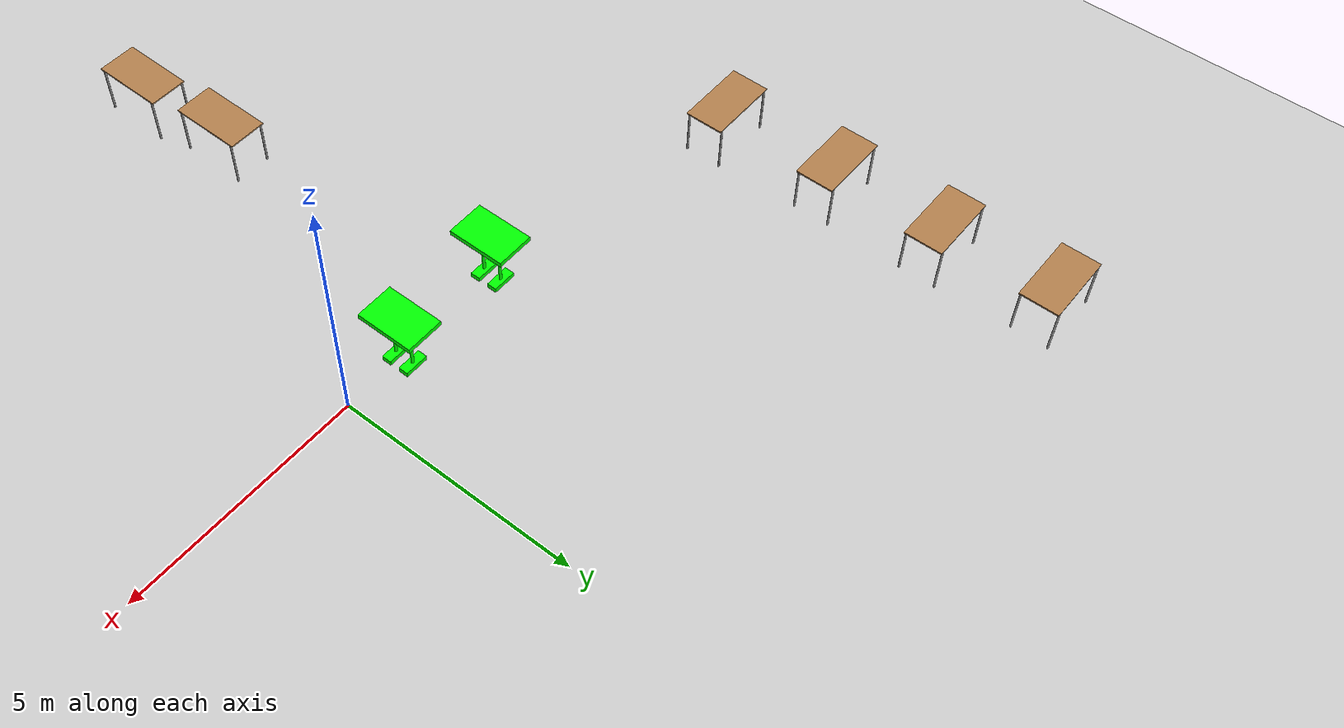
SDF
<sdf version="1.6">
 <world name="default">
  <model name="ground_plane">
   <static>1</static>
   <link name="link">
    <collision name="collision">
     <geometry><plane><normal>0 0 1</normal><size>100 100</size></plane></geometry>
     <surface>
      <contact><collide_bitmask>65535</collide_bitmask></contact>
      <friction><ode><mu>100</mu><mu2>50</mu2></ode></friction>
     </surface>
    </collision>
    <visual name="visual">
     <cast_shadows>0</cast_shadows>
     <geometry><plane><normal>0 0 1</normal><size>100 100</size></plane></geometry>
     <material>
      <script><uri>file://media/materials/scripts/gazebo.material</uri><name>Gazebo/Grey</name></script>
     </material>
    </visual>
   </link>
  </model>
  <model name="table">
   <static>1</static>
   <link name="link">
    <collision name="surface">
     <pose>0 0 1 0 -0 0</pose>
     <geometry><box><size>1.5 0.8 0.03</size></box></geometry>
     <surface><friction><ode><mu>0.6</mu><mu2>0.6</mu2></ode></friction></surface>
    </collision>
    <visual name="visual1">
     <pose>0 0 1 0 -0 0</pose>
     <geometry><box><size>1.5 0.8 0.03</size></box></geometry>
     <material>
      <script><uri>file://media/materials/scripts/gazebo.material</uri><name>Gazebo/Wood</name></script>
     </material>
    </visual>
    <collision name="front_left_leg">
     <pose>0.68 0.38 0.5 0 -0 0</pose>
     <geometry><cylinder><radius>0.02</radius><length>1</length></cylinder></geometry>
    </collision>
    <visual name="front_left_leg">
     <pose>0.68 0.38 0.5 0 -0 0</pose>
     <geometry><cylinder><radius>0.02</radius><length>1</length></cylinder></geometry>
     <material>
      <script><uri>file://media/materials/scripts/gazebo.material</uri><name>Gazebo/Grey</name></script>
     </material>
    </visual>
    <collision name="front_right_leg">
     <pose>0.68 -0.38 0.5 0 -0 0</pose>
     <geometry><cylinder><radius>0.02</radius><length>1</length></cylinder></geometry>
    </collision>
    <visual name="front_right_leg">
     <pose>0.68 -0.38 0.5 0 -0 0</pose>
     <geometry><cylinder><radius>0.02</radius><length>1</length></cylinder></geometry>
     <material>
      <script><uri>file://media/materials/scripts/gazebo.material</uri><name>Gazebo/Grey</name></script>
     </material>
    </visual>
    <collision name="back_right_leg">
     <pose>-0.68 -0.38 0.5 0 -0 0</pose>
     <geometry><cylinder><radius>0.02</radius><length>1</length></cylinder></geometry>
    </collision>
    <visual name="back_right_leg">
     <pose>-0.68 -0.38 0.5 0 -0 0</pose>
     <geometry><cylinder><radius>0.02</radius><length>1</length></cylinder></geometry>
     <material>
      <script><uri>file://media/materials/scripts/gazebo.material</uri><name>Gazebo/Grey</name></script>
     </material>
    </visual>
    <collision name="back_left_leg">
     <pose>-0.68 0.38 0.5 0 -0 0</pose>
     <geometry><cylinder><radius>0.02</radius><length>1</length></cylinder></geometry>
    </collision>
    <visual name="back_left_leg">
     <pose>-0.68 0.38 0.5 0 -0 0</pose>
     <geometry><cylinder><radius>0.02</radius><length>1</length></cylinder></geometry>
     <material>
      <script><uri>file://media/materials/scripts/gazebo.material</uri><name>Gazebo/Grey</name></script>
     </material>
    </visual>
   </link>
   <pose>-9.51613 8.33718 0 0 -0 0</pose>
  </model>
  <model name="table_clone">
   <static>1</static>
   <link name="link">
    <collision name="surface">
     <pose>0 0 1 0 -0 0</pose>
     <geometry><box><size>1.5 0.8 0.03</size></box></geometry>
     <surface><friction><ode><mu>0.6</mu><mu2>0.6</mu2></ode></friction></surface>
    </collision>
    <visual name="visual1">
     <pose>0 0 1 0 -0 0</pose>
     <geometry><box><size>1.5 0.8 0.03</size></box></geometry>
     <material>
      <script><uri>file://media/materials/scripts/gazebo.material</uri><name>Gazebo/Wood</name></script>
     </material>
    </visual>
    <collision name="front_left_leg">
     <pose>0.68 0.38 0.5 0 -0 0</pose>
     <geometry><cylinder><radius>0.02</radius><length>1</length></cylinder></geometry>
    </collision>
    <visual name="front_left_leg">
     <pose>0.68 0.38 0.5 0 -0 0</pose>
     <geometry><cylinder><radius>0.02</radius><length>1</length></cylinder></geometry>
     <material>
      <script><uri>file://media/materials/scripts/gazebo.material</uri><name>Gazebo/Grey</name></script>
     </material>
    </visual>
    <collision name="front_right_leg">
     <pose>0.68 -0.38 0.5 0 -0 0</pose>
     <geometry><cylinder><radius>0.02</radius><length>1</length></cylinder></geometry>
    </collision>
    <visual name="front_right_leg">
     <pose>0.68 -0.38 0.5 0 -0 0</pose>
     <geometry><cylinder><radius>0.02</radius><length>1</length></cylinder></geometry>
     <material>
      <script><uri>file://media/materials/scripts/gazebo.material</uri><name>Gazebo/Grey</name></script>
     </material>
    </visual>
    <collision name="back_right_leg">
     <pose>-0.68 -0.38 0.5 0 -0 0</pose>
     <geometry><cylinder><radius>0.02</radius><length>1</length></cylinder></geometry>
    </collision>
    <visual name="back_right_leg">
     <pose>-0.68 -0.38 0.5 0 -0 0</pose>
     <geometry><cylinder><radius>0.02</radius><length>1</length></cylinder></geometry>
     <material>
      <script><uri>file://media/materials/scripts/gazebo.material</uri><name>Gazebo/Grey</name></script>
     </material>
    </visual>
    <collision name="back_left_leg">
     <pose>-0.68 0.38 0.5 0 -0 0</pose>
     <geometry><cylinder><radius>0.02</radius><length>1</length></cylinder></geometry>
    </collision>
    <visual name="back_left_leg">
     <pose>-0.68 0.38 0.5 0 -0 0</pose>
     <geometry><cylinder><radius>0.02</radius><length>1</length></cylinder></geometry>
     <material>
      <script><uri>file://media/materials/scripts/gazebo.material</uri><name>Gazebo/Grey</name></script>
     </material>
    </visual>
   </link>
   <pose>-9.41745 6.02408 0 0 -0 0</pose>
  </model>
  <model name="table_clone_0">
   <static>1</static>
   <link name="link">
    <collision name="surface">
     <pose>0 0 1 0 -0 0</pose>
     <geometry><box><size>1.5 0.8 0.03</size></box></geometry>
     <surface><friction><ode><mu>0.6</mu><mu2>0.6</mu2></ode></friction></surface>
    </collision>
    <visual name="visual1">
     <pose>0 0 1 0 -0 0</pose>
     <geometry><box><size>1.5 0.8 0.03</size></box></geometry>
     <material>
      <script><uri>file://media/materials/scripts/gazebo.material</uri><name>Gazebo/Wood</name></script>
     </material>
    </visual>
    <collision name="front_left_leg">
     <pose>0.68 0.38 0.5 0 -0 0</pose>
     <geometry><cylinder><radius>0.02</radius><length>1</length></cylinder></geometry>
    </collision>
    <visual name="front_left_leg">
     <pose>0.68 0.38 0.5 0 -0 0</pose>
     <geometry><cylinder><radius>0.02</radius><length>1</length></cylinder></geometry>
     <material>
      <script><uri>file://media/materials/scripts/gazebo.material</uri><name>Gazebo/Grey</name></script>
     </material>
    </visual>
    <collision name="front_right_leg">
     <pose>0.68 -0.38 0.5 0 -0 0</pose>
     <geometry><cylinder><radius>0.02</radius><length>1</length></cylinder></geometry>
    </collision>
    <visual name="front_right_leg">
     <pose>0.68 -0.38 0.5 0 -0 0</pose>
     <geometry><cylinder><radius>0.02</radius><length>1</length></cylinder></geometry>
     <material>
      <script><uri>file://media/materials/scripts/gazebo.material</uri><name>Gazebo/Grey</name></script>
     </material>
    </visual>
    <collision name="back_right_leg">
     <pose>-0.68 -0.38 0.5 0 -0 0</pose>
     <geometry><cylinder><radius>0.02</radius><length>1</length></cylinder></geometry>
    </collision>
    <visual name="back_right_leg">
     <pose>-0.68 -0.38 0.5 0 -0 0</pose>
     <geometry><cylinder><radius>0.02</radius><length>1</length></cylinder></geometry>
     <material>
      <script><uri>file://media/materials/scripts/gazebo.material</uri><name>Gazebo/Grey</name></script>
     </material>
    </visual>
    <collision name="back_left_leg">
     <pose>-0.68 0.38 0.5 0 -0 0</pose>
     <geometry><cylinder><radius>0.02</radius><length>1</length></cylinder></geometry>
    </collision>
    <visual name="back_left_leg">
     <pose>-0.68 0.38 0.5 0 -0 0</pose>
     <geometry><cylinder><radius>0.02</radius><length>1</length></cylinder></geometry>
     <material>
      <script><uri>file://media/materials/scripts/gazebo.material</uri><name>Gazebo/Grey</name></script>
     </material>
    </visual>
   </link>
   <pose>-9.41508 3.66832 0 0 -0 0</pose>
  </model>
  <model name="table_clone_1">
   <static>1</static>
   <link name="link">
    <collision name="surface">
     <pose>0 0 1 0 -0 0</pose>
     <geometry><box><size>1.5 0.8 0.03</size></box></geometry>
     <surface><friction><ode><mu>0.6</mu><mu2>0.6</mu2></ode></friction></surface>
    </collision>
    <visual name="visual1">
     <pose>0 0 1 0 -0 0</pose>
     <geometry><box><size>1.5 0.8 0.03</size></box></geometry>
     <material>
      <script><uri>file://media/materials/scripts/gazebo.material</uri><name>Gazebo/Wood</name></script>
     </material>
    </visual>
    <collision name="front_left_leg">
     <pose>0.68 0.38 0.5 0 -0 0</pose>
     <geometry><cylinder><radius>0.02</radius><length>1</length></cylinder></geometry>
    </collision>
    <visual name="front_left_leg">
     <pose>0.68 0.38 0.5 0 -0 0</pose>
     <geometry><cylinder><radius>0.02</radius><length>1</length></cylinder></geometry>
     <material>
      <script><uri>file://media/materials/scripts/gazebo.material</uri><name>Gazebo/Grey</name></script>
     </material>
    </visual>
    <collision name="front_right_leg">
     <pose>0.68 -0.38 0.5 0 -0 0</pose>
     <geometry><cylinder><radius>0.02</radius><length>1</length></cylinder></geometry>
    </collision>
    <visual name="front_right_leg">
     <pose>0.68 -0.38 0.5 0 -0 0</pose>
     <geometry><cylinder><radius>0.02</radius><length>1</length></cylinder></geometry>
     <material>
      <script><uri>file://media/materials/scripts/gazebo.material</uri><name>Gazebo/Grey</name></script>
     </material>
    </visual>
    <collision name="back_right_leg">
     <pose>-0.68 -0.38 0.5 0 -0 0</pose>
     <geometry><cylinder><radius>0.02</radius><length>1</length></cylinder></geometry>
    </collision>
    <visual name="back_right_leg">
     <pose>-0.68 -0.38 0.5 0 -0 0</pose>
     <geometry><cylinder><radius>0.02</radius><length>1</length></cylinder></geometry>
     <material>
      <script><uri>file://media/materials/scripts/gazebo.material</uri><name>Gazebo/Grey</name></script>
     </material>
    </visual>
    <collision name="back_left_leg">
     <pose>-0.68 0.38 0.5 0 -0 0</pose>
     <geometry><cylinder><radius>0.02</radius><length>1</length></cylinder></geometry>
    </collision>
    <visual name="back_left_leg">
     <pose>-0.68 0.38 0.5 0 -0 0</pose>
     <geometry><cylinder><radius>0.02</radius><length>1</length></cylinder></geometry>
     <material>
      <script><uri>file://media/materials/scripts/gazebo.material</uri><name>Gazebo/Grey</name></script>
     </material>
    </visual>
   </link>
   <pose>-9.31257 1.19419 0 0 -0 0</pose>
  </model>
  <model name="table_clone_2_clone_1">
   <static>1</static>
   <link name="link">
    <collision name="surface">
     <pose>0 0 1 0 -0 0</pose>
     <geometry><box><size>1.5 0.8 0.03</size></box></geometry>
     <surface><friction><ode><mu>0.6</mu><mu2>0.6</mu2></ode></friction></surface>
    </collision>
    <visual name="visual1">
     <pose>0 0 1 0 -0 0</pose>
     <geometry><box><size>1.5 0.8 0.03</size></box></geometry>
     <material>
      <script><uri>file://media/materials/scripts/gazebo.material</uri><name>Gazebo/Wood</name></script>
     </material>
    </visual>
    <collision name="front_left_leg">
     <pose>0.68 0.38 0.5 0 -0 0</pose>
     <geometry><cylinder><radius>0.02</radius><length>1</length></cylinder></geometry>
    </collision>
    <visual name="front_left_leg">
     <pose>0.68 0.38 0.5 0 -0 0</pose>
     <geometry><cylinder><radius>0.02</radius><length>1</length></cylinder></geometry>
     <material>
      <script><uri>file://media/materials/scripts/gazebo.material</uri><name>Gazebo/Grey</name></script>
     </material>
    </visual>
    <collision name="front_right_leg">
     <pose>0.68 -0.38 0.5 0 -0 0</pose>
     <geometry><cylinder><radius>0.02</radius><length>1</length></cylinder></geometry>
    </collision>
    <visual name="front_right_leg">
     <pose>0.68 -0.38 0.5 0 -0 0</pose>
     <geometry><cylinder><radius>0.02</radius><length>1</length></cylinder></geometry>
     <material>
      <script><uri>file://media/materials/scripts/gazebo.material</uri><name>Gazebo/Grey</name></script>
     </material>
    </visual>
    <collision name="back_right_leg">
     <pose>-0.68 -0.38 0.5 0 -0 0</pose>
     <geometry><cylinder><radius>0.02</radius><length>1</length></cylinder></geometry>
    </collision>
    <visual name="back_right_leg">
     <pose>-0.68 -0.38 0.5 0 -0 0</pose>
     <geometry><cylinder><radius>0.02</radius><length>1</length></cylinder></geometry>
     <material>
      <script><uri>file://media/materials/scripts/gazebo.material</uri><name>Gazebo/Grey</name></script>
     </material>
    </visual>
    <collision name="back_left_leg">
     <pose>-0.68 0.38 0.5 0 -0 0</pose>
     <geometry><cylinder><radius>0.02</radius><length>1</length></cylinder></geometry>
    </collision>
    <visual name="back_left_leg">
     <pose>-0.68 0.38 0.5 0 -0 0</pose>
     <geometry><cylinder><radius>0.02</radius><length>1</length></cylinder></geometry>
     <material>
      <script><uri>file://media/materials/scripts/gazebo.material</uri><name>Gazebo/Grey</name></script>
     </material>
    </visual>
   </link>
   <pose>-2.62993 -8 0 0 -0 1.57</pose>
  </model>
  <model name="table_clone_2_clone_4">
   <static>1</static>
   <link name="link">
    <collision name="surface">
     <pose>0 0 1 0 -0 0</pose>
     <geometry><box><size>1.5 0.8 0.03</size></box></geometry>
     <surface><friction><ode><mu>0.6</mu><mu2>0.6</mu2></ode></friction></surface>
    </collision>
    <visual name="visual1">
     <pose>0 0 1 0 -0 0</pose>
     <geometry><box><size>1.5 0.8 0.03</size></box></geometry>
     <material>
      <script><uri>file://media/materials/scripts/gazebo.material</uri><name>Gazebo/Wood</name></script>
     </material>
    </visual>
    <collision name="front_left_leg">
     <pose>0.68 0.38 0.5 0 -0 0</pose>
     <geometry><cylinder><radius>0.02</radius><length>1</length></cylinder></geometry>
    </collision>
    <visual name="front_left_leg">
     <pose>0.68 0.38 0.5 0 -0 0</pose>
     <geometry><cylinder><radius>0.02</radius><length>1</length></cylinder></geometry>
     <material>
      <script><uri>file://media/materials/scripts/gazebo.material</uri><name>Gazebo/Grey</name></script>
     </material>
    </visual>
    <collision name="front_right_leg">
     <pose>0.68 -0.38 0.5 0 -0 0</pose>
     <geometry><cylinder><radius>0.02</radius><length>1</length></cylinder></geometry>
    </collision>
    <visual name="front_right_leg">
     <pose>0.68 -0.38 0.5 0 -0 0</pose>
     <geometry><cylinder><radius>0.02</radius><length>1</length></cylinder></geometry>
     <material>
      <script><uri>file://media/materials/scripts/gazebo.material</uri><name>Gazebo/Grey</name></script>
     </material>
    </visual>
    <collision name="back_right_leg">
     <pose>-0.68 -0.38 0.5 0 -0 0</pose>
     <geometry><cylinder><radius>0.02</radius><length>1</length></cylinder></geometry>
    </collision>
    <visual name="back_right_leg">
     <pose>-0.68 -0.38 0.5 0 -0 0</pose>
     <geometry><cylinder><radius>0.02</radius><length>1</length></cylinder></geometry>
     <material>
      <script><uri>file://media/materials/scripts/gazebo.material</uri><name>Gazebo/Grey</name></script>
     </material>
    </visual>
    <collision name="back_left_leg">
     <pose>-0.68 0.38 0.5 0 -0 0</pose>
     <geometry><cylinder><radius>0.02</radius><length>1</length></cylinder></geometry>
    </collision>
    <visual name="back_left_leg">
     <pose>-0.68 0.38 0.5 0 -0 0</pose>
     <geometry><cylinder><radius>0.02</radius><length>1</length></cylinder></geometry>
     <material>
      <script><uri>file://media/materials/scripts/gazebo.material</uri><name>Gazebo/Grey</name></script>
     </material>
    </visual>
   </link>
   <pose>-2.81714 -6 0 0 -0 1.57</pose>
  </model>
  <model name="humanoid">
   <link name="link_0">
    <pose>-0.2 0 -0.471429 0 -0 0</pose>
    <inertial>
     <mass>1</mass>
     <inertia>
      <ixx>0.166667</ixx>
      <ixy>0</ixy>
      <ixz>0</ixz>
      <iyy>0.166667</iyy>
      <iyz>0</iyz>
      <izz>0.166667</izz>
     </inertia>
    </inertial>
    <visual name="visual">
     <geometry><box><size>0.2 0.5 0.1</size></box></geometry>
     <material>
      <lighting>1</lighting>
      <script><uri>file://media/materials/scripts/gazebo.material</uri><name>Gazebo/Grey</name></script>
      <shader type="pixel"><normal_map>__default__</normal_map></shader>
      <ambient>0 1 0 1</ambient>
      <diffuse>0.7 0.7 0.7 1</diffuse>
      <specular>0.01 0.01 0.01 1</specular>
      <emissive>0 0 0 1</emissive>
     </material>
    </visual>
    <collision name="collision">
     <geometry><box><size>0.2 0.5 0.1</size></box></geometry>
     <surface>
      <friction>
       <ode><mu>1</mu><mu2>1</mu2><fdir1>0 0 0</fdir1><slip1>0</slip1><slip2>0</slip2></ode>
       <torsional>
        <coefficient>1</coefficient>
        <patch_radius>0</patch_radius>
        <surface_radius>0</surface_radius>
        <use_patch_radius>1</use_patch_radius>
        <ode><slip>0</slip></ode>
       </torsional>
      </friction>
      <bounce><restitution_coefficient>0</restitution_coefficient><threshold>1e+06</threshold></bounce>
      <contact>
       <collide_without_contact>0</collide_without_contact>
       <collide_without_contact_bitmask>1</collide_without_contact_bitmask>
       <collide_bitmask>1</collide_bitmask>
       <ode>
        <soft_cfm>0</soft_cfm>
        <soft_erp>0.2</soft_erp>
        <kp>1e+13</kp>
        <kd>1</kd>
        <max_vel>0.01</max_vel>
        <min_depth>0</min_depth>
       </ode>
       <bullet>
        <split_impulse>1</split_impulse>
        <split_impulse_penetration_threshold>-0.01</split_impulse_penetration_threshold>
        <soft_cfm>0</soft_cfm>
        <soft_erp>0.2</soft_erp>
        <kp>1e+13</kp>
        <kd>1</kd>
       </bullet>
      </contact>
     </surface>
    </collision>
   </link>
   <link name="link_0_clone">
    <pose>0.2 0 -0.471429 0 -0 0</pose>
    <inertial>
     <mass>1</mass>
     <inertia>
      <ixx>0.166667</ixx>
      <ixy>0</ixy>
      <ixz>0</ixz>
      <iyy>0.166667</iyy>
      <iyz>0</iyz>
      <izz>0.166667</izz>
     </inertia>
    </inertial>
    <visual name="visual">
     <geometry><box><size>0.2 0.5 0.1</size></box></geometry>
     <material>
      <lighting>1</lighting>
      <script><uri>file://media/materials/scripts/gazebo.material</uri><name>Gazebo/Grey</name></script>
      <shader type="pixel"><normal_map>__default__</normal_map></shader>
      <ambient>0 1 0 1</ambient>
      <diffuse>0.7 0.7 0.7 1</diffuse>
      <specular>0.01 0.01 0.01 1</specular>
      <emissive>0 0 0 1</emissive>
     </material>
    </visual>
    <collision name="collision">
     <geometry><box><size>0.2 0.5 0.1</size></box></geometry>
     <surface>
      <friction>
       <ode><mu>1</mu><mu2>1</mu2><fdir1>0 0 0</fdir1><slip1>0</slip1><slip2>0</slip2></ode>
       <torsional>
        <coefficient>1</coefficient>
        <patch_radius>0</patch_radius>
        <surface_radius>0</surface_radius>
        <use_patch_radius>1</use_patch_radius>
        <ode><slip>0</slip></ode>
       </torsional>
      </friction>
      <bounce><restitution_coefficient>0</restitution_coefficient><threshold>1e+06</threshold></bounce>
      <contact>
       <collide_without_contact>0</collide_without_contact>
       <collide_without_contact_bitmask>1</collide_without_contact_bitmask>
       <collide_bitmask>1</collide_bitmask>
       <ode>
        <soft_cfm>0</soft_cfm>
        <soft_erp>0.2</soft_erp>
        <kp>1e+13</kp>
        <kd>1</kd>
        <max_vel>0.01</max_vel>
        <min_depth>0</min_depth>
       </ode>
       <bullet>
        <split_impulse>1</split_impulse>
        <split_impulse_penetration_threshold>-0.01</split_impulse_penetration_threshold>
        <soft_cfm>0</soft_cfm>
        <soft_erp>0.2</soft_erp>
        <kp>1e+13</kp>
        <kd>1</kd>
       </bullet>
      </contact>
     </surface>
    </collision>
   </link>
   <link name="link_1">
    <pose>-0.2 0 -0.171429 0 -0 0</pose>
    <inertial>
     <mass>1</mass>
     <inertia><ixx>0.145833</ixx><ixy>0</ixy><ixz>0</ixz><iyy>0.145833</iyy><iyz>0</iyz><izz>0.125</izz></inertia>
    </inertial>
    <visual name="visual">
     <geometry><cylinder><radius>0.03</radius><length>0.5</length></cylinder></geometry>
     <material>
      <lighting>1</lighting>
      <script><uri>file://media/materials/scripts/gazebo.material</uri><name>Gazebo/Grey</name></script>
      <shader type="pixel"><normal_map>__default__</normal_map></shader>
      <ambient>0 1 0 1</ambient>
      <diffuse>0.7 0.7 0.7 1</diffuse>
      <specular>0.01 0.01 0.01 1</specular>
      <emissive>0 0 0 1</emissive>
     </material>
    </visual>
    <collision name="collision">
     <geometry><cylinder><radius>0.03</radius><length>0.5</length></cylinder></geometry>
     <surface>
      <friction>
       <ode><mu>1</mu><mu2>1</mu2><fdir1>0 0 0</fdir1><slip1>0</slip1><slip2>0</slip2></ode>
       <torsional>
        <coefficient>1</coefficient>
        <patch_radius>0</patch_radius>
        <surface_radius>0</surface_radius>
        <use_patch_radius>1</use_patch_radius>
        <ode><slip>0</slip></ode>
       </torsional>
      </friction>
      <bounce><restitution_coefficient>0</restitution_coefficient><threshold>1e+06</threshold></bounce>
      <contact>
       <collide_without_contact>0</collide_without_contact>
       <collide_without_contact_bitmask>1</collide_without_contact_bitmask>
       <collide_bitmask>1</collide_bitmask>
       <ode>
        <soft_cfm>0</soft_cfm>
        <soft_erp>0.2</soft_erp>
        <kp>1e+13</kp>
        <kd>1</kd>
        <max_vel>0.01</max_vel>
        <min_depth>0</min_depth>
       </ode>
       <bullet>
        <split_impulse>1</split_impulse>
        <split_impulse_penetration_threshold>-0.01</split_impulse_penetration_threshold>
        <soft_cfm>0</soft_cfm>
        <soft_erp>0.2</soft_erp>
        <kp>1e+13</kp>
        <kd>1</kd>
       </bullet>
      </contact>
     </surface>
    </collision>
   </link>
   <link name="link_1_clone">
    <pose>-0.2 0 0.328571 0 -0 0</pose>
    <inertial>
     <mass>1</mass>
     <inertia><ixx>0.145833</ixx><ixy>0</ixy><ixz>0</ixz><iyy>0.145833</iyy><iyz>0</iyz><izz>0.125</izz></inertia>
    </inertial>
    <visual name="visual">
     <geometry><cylinder><radius>0.03</radius><length>0.5</length></cylinder></geometry>
     <material>
      <lighting>1</lighting>
      <script><uri>file://media/materials/scripts/gazebo.material</uri><name>Gazebo/Grey</name></script>
      <shader type="pixel"><normal_map>__default__</normal_map></shader>
      <ambient>0 1 0 1</ambient>
      <diffuse>0.7 0.7 0.7 1</diffuse>
      <specular>0.01 0.01 0.01 1</specular>
      <emissive>0 0 0 1</emissive>
     </material>
    </visual>
    <collision name="collision">
     <geometry><cylinder><radius>0.03</radius><length>0.5</length></cylinder></geometry>
     <surface>
      <friction>
       <ode><mu>1</mu><mu2>1</mu2><fdir1>0 0 0</fdir1><slip1>0</slip1><slip2>0</slip2></ode>
       <torsional>
        <coefficient>1</coefficient>
        <patch_radius>0</patch_radius>
        <surface_radius>0</surface_radius>
        <use_patch_radius>1</use_patch_radius>
        <ode><slip>0</slip></ode>
       </torsional>
      </friction>
      <bounce><restitution_coefficient>0</restitution_coefficient><threshold>1e+06</threshold></bounce>
      <contact>
       <collide_without_contact>0</collide_without_contact>
       <collide_without_contact_bitmask>1</collide_without_contact_bitmask>
       <collide_bitmask>1</collide_bitmask>
       <ode>
        <soft_cfm>0</soft_cfm>
        <soft_erp>0.2</soft_erp>
        <kp>1e+13</kp>
        <kd>1</kd>
        <max_vel>0.01</max_vel>
        <min_depth>0</min_depth>
       </ode>
       <bullet>
        <split_impulse>1</split_impulse>
        <split_impulse_penetration_threshold>-0.01</split_impulse_penetration_threshold>
        <soft_cfm>0</soft_cfm>
        <soft_erp>0.2</soft_erp>
        <kp>1e+13</kp>
        <kd>1</kd>
       </bullet>
      </contact>
     </surface>
    </collision>
   </link>
   <link name="link_1_clone_0">
    <pose>0.2 0 -0.171429 0 -0 0</pose>
    <inertial>
     <mass>1</mass>
     <inertia><ixx>0.145833</ixx><ixy>0</ixy><ixz>0</ixz><iyy>0.145833</iyy><iyz>0</iyz><izz>0.125</izz></inertia>
    </inertial>
    <visual name="visual">
     <geometry><cylinder><radius>0.03</radius><length>0.5</length></cylinder></geometry>
     <material>
      <lighting>1</lighting>
      <script><uri>file://media/materials/scripts/gazebo.material</uri><name>Gazebo/Grey</name></script>
      <shader type="pixel"><normal_map>__default__</normal_map></shader>
      <ambient>0 1 0 1</ambient>
      <diffuse>0.7 0.7 0.7 1</diffuse>
      <specular>0.01 0.01 0.01 1</specular>
      <emissive>0 0 0 1</emissive>
     </material>
    </visual>
    <collision name="collision">
     <geometry><cylinder><radius>0.03</radius><length>0.5</length></cylinder></geometry>
     <surface>
      <friction>
       <ode><mu>1</mu><mu2>1</mu2><fdir1>0 0 0</fdir1><slip1>0</slip1><slip2>0</slip2></ode>
       <torsional>
        <coefficient>1</coefficient>
        <patch_radius>0</patch_radius>
        <surface_radius>0</surface_radius>
        <use_patch_radius>1</use_patch_radius>
        <ode><slip>0</slip></ode>
       </torsional>
      </friction>
      <bounce><restitution_coefficient>0</restitution_coefficient><threshold>1e+06</threshold></bounce>
      <contact>
       <collide_without_contact>0</collide_without_contact>
       <collide_without_contact_bitmask>1</collide_without_contact_bitmask>
       <collide_bitmask>1</collide_bitmask>
       <ode>
        <soft_cfm>0</soft_cfm>
        <soft_erp>0.2</soft_erp>
        <kp>1e+13</kp>
        <kd>1</kd>
        <max_vel>0.01</max_vel>
        <min_depth>0</min_depth>
       </ode>
       <bullet>
        <split_impulse>1</split_impulse>
        <split_impulse_penetration_threshold>-0.01</split_impulse_penetration_threshold>
        <soft_cfm>0</soft_cfm>
        <soft_erp>0.2</soft_erp>
        <kp>1e+13</kp>
        <kd>1</kd>
       </bullet>
      </contact>
     </surface>
    </collision>
   </link>
   <link name="link_1_clone_clone">
    <pose>0.2 0 0.328571 0 -0 0</pose>
    <inertial>
     <mass>1</mass>
     <inertia><ixx>0.145833</ixx><ixy>0</ixy><ixz>0</ixz><iyy>0.145833</iyy><iyz>0</iyz><izz>0.125</izz></inertia>
    </inertial>
    <visual name="visual">
     <geometry><cylinder><radius>0.03</radius><length>0.5</length></cylinder></geometry>
     <material>
      <lighting>1</lighting>
      <script><uri>file://media/materials/scripts/gazebo.material</uri><name>Gazebo/Grey</name></script>
      <shader type="pixel"><normal_map>__default__</normal_map></shader>
      <ambient>0 1 0 1</ambient>
      <diffuse>0.7 0.7 0.7 1</diffuse>
      <specular>0.01 0.01 0.01 1</specular>
      <emissive>0 0 0 1</emissive>
     </material>
    </visual>
    <collision name="collision">
     <geometry><cylinder><radius>0.03</radius><length>0.5</length></cylinder></geometry>
     <surface>
      <friction>
       <ode><mu>1</mu><mu2>1</mu2><fdir1>0 0 0</fdir1><slip1>0</slip1><slip2>0</slip2></ode>
       <torsional>
        <coefficient>1</coefficient>
        <patch_radius>0</patch_radius>
        <surface_radius>0</surface_radius>
        <use_patch_radius>1</use_patch_radius>
        <ode><slip>0</slip></ode>
       </torsional>
      </friction>
      <bounce><restitution_coefficient>0</restitution_coefficient><threshold>1e+06</threshold></bounce>
      <contact>
       <collide_without_contact>0</collide_without_contact>
       <collide_without_contact_bitmask>1</collide_without_contact_bitmask>
       <collide_bitmask>1</collide_bitmask>
       <ode>
        <soft_cfm>0</soft_cfm>
        <soft_erp>0.2</soft_erp>
        <kp>1e+13</kp>
        <kd>1</kd>
        <max_vel>0.01</max_vel>
        <min_depth>0</min_depth>
       </ode>
       <bullet>
        <split_impulse>1</split_impulse>
        <split_impulse_penetration_threshold>-0.01</split_impulse_penetration_threshold>
        <soft_cfm>0</soft_cfm>
        <soft_erp>0.2</soft_erp>
        <kp>1e+13</kp>
        <kd>1</kd>
       </bullet>
      </contact>
     </surface>
    </collision>
   </link>
   <link name="link_3">
    <pose>0 0 0.628571 0 -0 0</pose>
    <inertial>
     <mass>1</mass>
     <inertia>
      <ixx>0.166667</ixx>
      <ixy>0</ixy>
      <ixz>0</ixz>
      <iyy>0.166667</iyy>
      <iyz>0</iyz>
      <izz>0.166667</izz>
     </inertia>
    </inertial>
    <visual name="visual">
     <geometry><box><size>1.2 0.8 0.1</size></box></geometry>
     <material>
      <lighting>1</lighting>
      <script><uri>file://media/materials/scripts/gazebo.material</uri><name>Gazebo/Grey</name></script>
      <shader type="pixel"><normal_map>__default__</normal_map></shader>
      <ambient>0 1 0 1</ambient>
      <diffuse>0.7 0.7 0.7 1</diffuse>
      <specular>0.01 0.01 0.01 1</specular>
      <emissive>0 0 0 1</emissive>
     </material>
    </visual>
    <collision name="collision">
     <geometry><box><size>1.2 0.8 0.1</size></box></geometry>
     <surface>
      <friction>
       <ode><mu>1</mu><mu2>1</mu2><fdir1>0 0 0</fdir1><slip1>0</slip1><slip2>0</slip2></ode>
       <torsional>
        <coefficient>1</coefficient>
        <patch_radius>0</patch_radius>
        <surface_radius>0</surface_radius>
        <use_patch_radius>1</use_patch_radius>
        <ode><slip>0</slip></ode>
       </torsional>
      </friction>
      <bounce><restitution_coefficient>0</restitution_coefficient><threshold>1e+06</threshold></bounce>
      <contact>
       <collide_without_contact>0</collide_without_contact>
       <collide_without_contact_bitmask>1</collide_without_contact_bitmask>
       <collide_bitmask>1</collide_bitmask>
       <ode>
        <soft_cfm>0</soft_cfm>
        <soft_erp>0.2</soft_erp>
        <kp>1e+13</kp>
        <kd>1</kd>
        <max_vel>0.01</max_vel>
        <min_depth>0</min_depth>
       </ode>
       <bullet>
        <split_impulse>1</split_impulse>
        <split_impulse_penetration_threshold>-0.01</split_impulse_penetration_threshold>
        <soft_cfm>0</soft_cfm>
        <soft_erp>0.2</soft_erp>
        <kp>1e+13</kp>
        <kd>1</kd>
       </bullet>
      </contact>
     </surface>
    </collision>
   </link>
   <joint name="link_1_JOINT_3" type="fixed">
    <parent>link_1</parent>
    <child>link_0</child>
    <physics>
     <ode><limit><cfm>0</cfm><erp>0.2</erp></limit><suspension><cfm>0</cfm><erp>0.2</erp></suspension></ode>
    </physics>
   </joint>
   <joint name="link_1_clone_0_JOINT_2" type="fixed">
    <parent>link_1_clone_0</parent>
    <child>link_0_clone</child>
    <physics>
     <ode><limit><cfm>0</cfm><erp>0.2</erp></limit><suspension><cfm>0</cfm><erp>0.2</erp></suspension></ode>
    </physics>
   </joint>
   <joint name="link_1_clone_JOINT_1" type="universal">
    <parent>link_1_clone</parent>
    <child>link_1</child>
    <axis>
     <xyz>1 0 0</xyz>
     <use_parent_model_frame>0</use_parent_model_frame>
     <limit><lower>-0.5</lower><upper>0.5</upper><effort>-1</effort><velocity>-1</velocity></limit>
     <dynamics>
      <spring_reference>0</spring_reference>
      <spring_stiffness>0</spring_stiffness>
      <damping>0</damping>
     </dynamics>
    </axis>
    <axis2>
     <xyz>0 1 0</xyz>
     <use_parent_model_frame>0</use_parent_model_frame>
     <dynamics>
      <spring_reference>0</spring_reference>
      <spring_stiffness>0</spring_stiffness>
      <damping>0</damping>
     </dynamics>
     <limit><lower>-0.5</lower><upper>0.5</upper><effort>-1</effort><velocity>-1</velocity></limit>
    </axis2>
    <physics>
     <ode><limit><cfm>0</cfm><erp>0.2</erp></limit><suspension><cfm>0</cfm><erp>0.2</erp></suspension></ode>
    </physics>
   </joint>
   <joint name="link_1_clone_clone_JOINT_4" type="universal">
    <parent>link_1_clone_clone</parent>
    <child>link_1_clone_0</child>
    <axis>
     <xyz>1 0 0</xyz>
     <use_parent_model_frame>0</use_parent_model_frame>
     <limit><lower>-0.5</lower><upper>0.5</upper><effort>-1</effort><velocity>-1</velocity></limit>
     <dynamics>
      <spring_reference>0</spring_reference>
      <spring_stiffness>0</spring_stiffness>
      <damping>0</damping>
     </dynamics>
    </axis>
    <axis2>
     <xyz>0 1 0</xyz>
     <use_parent_model_frame>0</use_parent_model_frame>
     <dynamics>
      <spring_reference>0</spring_reference>
      <spring_stiffness>0</spring_stiffness>
      <damping>0</damping>
     </dynamics>
     <limit><lower>-0.5</lower><upper>0.5</upper><effort>-1</effort><velocity>-1</velocity></limit>
    </axis2>
    <physics>
     <ode><limit><cfm>0</cfm><erp>0.2</erp></limit><suspension><cfm>0</cfm><erp>0.2</erp></suspension></ode>
    </physics>
   </joint>
   <joint name="link_3_JOINT_5" type="fixed">
    <parent>link_3</parent>
    <child>link_1_clone</child>
    <physics>
     <ode><limit><cfm>0</cfm><erp>0.2</erp></limit><suspension><cfm>0</cfm><erp>0.2</erp></suspension></ode>
    </physics>
   </joint>
   <joint name="link_3_JOINT_6" type="fixed">
    <parent>link_3</parent>
    <child>link_1_clone_clone</child>
    <physics>
     <ode><limit><cfm>0</cfm><erp>0.2</erp></limit><suspension><cfm>0</cfm><erp>0.2</erp></suspension></ode>
    </physics>
   </joint>
   <static>0</static>
   <pose>-1.35444 0.07446 0.521429 0 -0 1.57347</pose>
  </model>
  <model name="humanoid_0">
   <link name="link_0">
    <pose>-0.2 0 -0.471429 0 -0 0</pose>
    <inertial>
     <mass>1</mass>
     <inertia>
      <ixx>0.166667</ixx>
      <ixy>0</ixy>
      <ixz>0</ixz>
      <iyy>0.166667</iyy>
      <iyz>0</iyz>
      <izz>0.166667</izz>
     </inertia>
    </inertial>
    <visual name="visual">
     <geometry><box><size>0.2 0.5 0.1</size></box></geometry>
     <material>
      <lighting>1</lighting>
      <script><uri>file://media/materials/scripts/gazebo.material</uri><name>Gazebo/Grey</name></script>
      <shader type="pixel"><normal_map>__default__</normal_map></shader>
      <ambient>0 1 0 1</ambient>
      <diffuse>0.7 0.7 0.7 1</diffuse>
      <specular>0.01 0.01 0.01 1</specular>
      <emissive>0 0 0 1</emissive>
     </material>
    </visual>
    <collision name="collision">
     <geometry><box><size>0.2 0.5 0.1</size></box></geometry>
     <surface>
      <friction>
       <ode><mu>1</mu><mu2>1</mu2><fdir1>0 0 0</fdir1><slip1>0</slip1><slip2>0</slip2></ode>
       <torsional>
        <coefficient>1</coefficient>
        <patch_radius>0</patch_radius>
        <surface_radius>0</surface_radius>
        <use_patch_radius>1</use_patch_radius>
        <ode><slip>0</slip></ode>
       </torsional>
      </friction>
      <bounce><restitution_coefficient>0</restitution_coefficient><threshold>1e+06</threshold></bounce>
      <contact>
       <collide_without_contact>0</collide_without_contact>
       <collide_without_contact_bitmask>1</collide_without_contact_bitmask>
       <collide_bitmask>1</collide_bitmask>
       <ode>
        <soft_cfm>0</soft_cfm>
        <soft_erp>0.2</soft_erp>
        <kp>1e+13</kp>
        <kd>1</kd>
        <max_vel>0.01</max_vel>
        <min_depth>0</min_depth>
       </ode>
       <bullet>
        <split_impulse>1</split_impulse>
        <split_impulse_penetration_threshold>-0.01</split_impulse_penetration_threshold>
        <soft_cfm>0</soft_cfm>
        <soft_erp>0.2</soft_erp>
        <kp>1e+13</kp>
        <kd>1</kd>
       </bullet>
      </contact>
     </surface>
    </collision>
   </link>
   <link name="link_0_clone">
    <pose>0.2 0 -0.471429 0 -0 0</pose>
    <inertial>
     <mass>1</mass>
     <inertia>
      <ixx>0.166667</ixx>
      <ixy>0</ixy>
      <ixz>0</ixz>
      <iyy>0.166667</iyy>
      <iyz>0</iyz>
      <izz>0.166667</izz>
     </inertia>
    </inertial>
    <visual name="visual">
     <geometry><box><size>0.2 0.5 0.1</size></box></geometry>
     <material>
      <lighting>1</lighting>
      <script><uri>file://media/materials/scripts/gazebo.material</uri><name>Gazebo/Grey</name></script>
      <shader type="pixel"><normal_map>__default__</normal_map></shader>
      <ambient>0 1 0 1</ambient>
      <diffuse>0.7 0.7 0.7 1</diffuse>
      <specular>0.01 0.01 0.01 1</specular>
      <emissive>0 0 0 1</emissive>
     </material>
    </visual>
    <collision name="collision">
     <geometry><box><size>0.2 0.5 0.1</size></box></geometry>
     <surface>
      <friction>
       <ode><mu>1</mu><mu2>1</mu2><fdir1>0 0 0</fdir1><slip1>0</slip1><slip2>0</slip2></ode>
       <torsional>
        <coefficient>1</coefficient>
        <patch_radius>0</patch_radius>
        <surface_radius>0</surface_radius>
        <use_patch_radius>1</use_patch_radius>
        <ode><slip>0</slip></ode>
       </torsional>
      </friction>
      <bounce><restitution_coefficient>0</restitution_coefficient><threshold>1e+06</threshold></bounce>
      <contact>
       <collide_without_contact>0</collide_without_contact>
       <collide_without_contact_bitmask>1</collide_without_contact_bitmask>
       <collide_bitmask>1</collide_bitmask>
       <ode>
        <soft_cfm>0</soft_cfm>
        <soft_erp>0.2</soft_erp>
        <kp>1e+13</kp>
        <kd>1</kd>
        <max_vel>0.01</max_vel>
        <min_depth>0</min_depth>
       </ode>
       <bullet>
        <split_impulse>1</split_impulse>
        <split_impulse_penetration_threshold>-0.01</split_impulse_penetration_threshold>
        <soft_cfm>0</soft_cfm>
        <soft_erp>0.2</soft_erp>
        <kp>1e+13</kp>
        <kd>1</kd>
       </bullet>
      </contact>
     </surface>
    </collision>
   </link>
   <link name="link_1">
    <pose>-0.2 0 -0.171429 0 -0 0</pose>
    <inertial>
     <mass>1</mass>
     <inertia><ixx>0.145833</ixx><ixy>0</ixy><ixz>0</ixz><iyy>0.145833</iyy><iyz>0</iyz><izz>0.125</izz></inertia>
    </inertial>
    <visual name="visual">
     <geometry><cylinder><radius>0.03</radius><length>0.5</length></cylinder></geometry>
     <material>
      <lighting>1</lighting>
      <script><uri>file://media/materials/scripts/gazebo.material</uri><name>Gazebo/Grey</name></script>
      <shader type="pixel"><normal_map>__default__</normal_map></shader>
      <ambient>0 1 0 1</ambient>
      <diffuse>0.7 0.7 0.7 1</diffuse>
      <specular>0.01 0.01 0.01 1</specular>
      <emissive>0 0 0 1</emissive>
     </material>
    </visual>
    <collision name="collision">
     <geometry><cylinder><radius>0.03</radius><length>0.5</length></cylinder></geometry>
     <surface>
      <friction>
       <ode><mu>1</mu><mu2>1</mu2><fdir1>0 0 0</fdir1><slip1>0</slip1><slip2>0</slip2></ode>
       <torsional>
        <coefficient>1</coefficient>
        <patch_radius>0</patch_radius>
        <surface_radius>0</surface_radius>
        <use_patch_radius>1</use_patch_radius>
        <ode><slip>0</slip></ode>
       </torsional>
      </friction>
      <bounce><restitution_coefficient>0</restitution_coefficient><threshold>1e+06</threshold></bounce>
      <contact>
       <collide_without_contact>0</collide_without_contact>
       <collide_without_contact_bitmask>1</collide_without_contact_bitmask>
       <collide_bitmask>1</collide_bitmask>
       <ode>
        <soft_cfm>0</soft_cfm>
        <soft_erp>0.2</soft_erp>
        <kp>1e+13</kp>
        <kd>1</kd>
        <max_vel>0.01</max_vel>
        <min_depth>0</min_depth>
       </ode>
       <bullet>
        <split_impulse>1</split_impulse>
        <split_impulse_penetration_threshold>-0.01</split_impulse_penetration_threshold>
        <soft_cfm>0</soft_cfm>
        <soft_erp>0.2</soft_erp>
        <kp>1e+13</kp>
        <kd>1</kd>
       </bullet>
      </contact>
     </surface>
    </collision>
   </link>
   <link name="link_1_clone">
    <pose>-0.2 0 0.328571 0 -0 0</pose>
    <inertial>
     <mass>1</mass>
     <inertia><ixx>0.145833</ixx><ixy>0</ixy><ixz>0</ixz><iyy>0.145833</iyy><iyz>0</iyz><izz>0.125</izz></inertia>
    </inertial>
    <visual name="visual">
     <geometry><cylinder><radius>0.03</radius><length>0.5</length></cylinder></geometry>
     <material>
      <lighting>1</lighting>
      <script><uri>file://media/materials/scripts/gazebo.material</uri><name>Gazebo/Grey</name></script>
      <shader type="pixel"><normal_map>__default__</normal_map></shader>
      <ambient>0 1 0 1</ambient>
      <diffuse>0.7 0.7 0.7 1</diffuse>
      <specular>0.01 0.01 0.01 1</specular>
      <emissive>0 0 0 1</emissive>
     </material>
    </visual>
    <collision name="collision">
     <geometry><cylinder><radius>0.03</radius><length>0.5</length></cylinder></geometry>
     <surface>
      <friction>
       <ode><mu>1</mu><mu2>1</mu2><fdir1>0 0 0</fdir1><slip1>0</slip1><slip2>0</slip2></ode>
       <torsional>
        <coefficient>1</coefficient>
        <patch_radius>0</patch_radius>
        <surface_radius>0</surface_radius>
        <use_patch_radius>1</use_patch_radius>
        <ode><slip>0</slip></ode>
       </torsional>
      </friction>
      <bounce><restitution_coefficient>0</restitution_coefficient><threshold>1e+06</threshold></bounce>
      <contact>
       <collide_without_contact>0</collide_without_contact>
       <collide_without_contact_bitmask>1</collide_without_contact_bitmask>
       <collide_bitmask>1</collide_bitmask>
       <ode>
        <soft_cfm>0</soft_cfm>
        <soft_erp>0.2</soft_erp>
        <kp>1e+13</kp>
        <kd>1</kd>
        <max_vel>0.01</max_vel>
        <min_depth>0</min_depth>
       </ode>
       <bullet>
        <split_impulse>1</split_impulse>
        <split_impulse_penetration_threshold>-0.01</split_impulse_penetration_threshold>
        <soft_cfm>0</soft_cfm>
        <soft_erp>0.2</soft_erp>
        <kp>1e+13</kp>
        <kd>1</kd>
       </bullet>
      </contact>
     </surface>
    </collision>
   </link>
   <link name="link_1_clone_0">
    <pose>0.2 0 -0.171429 0 -0 0</pose>
    <inertial>
     <mass>1</mass>
     <inertia><ixx>0.145833</ixx><ixy>0</ixy><ixz>0</ixz><iyy>0.145833</iyy><iyz>0</iyz><izz>0.125</izz></inertia>
    </inertial>
    <visual name="visual">
     <geometry><cylinder><radius>0.03</radius><length>0.5</length></cylinder></geometry>
     <material>
      <lighting>1</lighting>
      <script><uri>file://media/materials/scripts/gazebo.material</uri><name>Gazebo/Grey</name></script>
      <shader type="pixel"><normal_map>__default__</normal_map></shader>
      <ambient>0 1 0 1</ambient>
      <diffuse>0.7 0.7 0.7 1</diffuse>
      <specular>0.01 0.01 0.01 1</specular>
      <emissive>0 0 0 1</emissive>
     </material>
    </visual>
    <collision name="collision">
     <geometry><cylinder><radius>0.03</radius><length>0.5</length></cylinder></geometry>
     <surface>
      <friction>
       <ode><mu>1</mu><mu2>1</mu2><fdir1>0 0 0</fdir1><slip1>0</slip1><slip2>0</slip2></ode>
       <torsional>
        <coefficient>1</coefficient>
        <patch_radius>0</patch_radius>
        <surface_radius>0</surface_radius>
        <use_patch_radius>1</use_patch_radius>
        <ode><slip>0</slip></ode>
       </torsional>
      </friction>
      <bounce><restitution_coefficient>0</restitution_coefficient><threshold>1e+06</threshold></bounce>
      <contact>
       <collide_without_contact>0</collide_without_contact>
       <collide_without_contact_bitmask>1</collide_without_contact_bitmask>
       <collide_bitmask>1</collide_bitmask>
       <ode>
        <soft_cfm>0</soft_cfm>
        <soft_erp>0.2</soft_erp>
        <kp>1e+13</kp>
        <kd>1</kd>
        <max_vel>0.01</max_vel>
        <min_depth>0</min_depth>
       </ode>
       <bullet>
        <split_impulse>1</split_impulse>
        <split_impulse_penetration_threshold>-0.01</split_impulse_penetration_threshold>
        <soft_cfm>0</soft_cfm>
        <soft_erp>0.2</soft_erp>
        <kp>1e+13</kp>
        <kd>1</kd>
       </bullet>
      </contact>
     </surface>
    </collision>
   </link>
   <link name="link_1_clone_clone">
    <pose>0.2 0 0.328571 0 -0 0</pose>
    <inertial>
     <mass>1</mass>
     <inertia><ixx>0.145833</ixx><ixy>0</ixy><ixz>0</ixz><iyy>0.145833</iyy><iyz>0</iyz><izz>0.125</izz></inertia>
    </inertial>
    <visual name="visual">
     <geometry><cylinder><radius>0.03</radius><length>0.5</length></cylinder></geometry>
     <material>
      <lighting>1</lighting>
      <script><uri>file://media/materials/scripts/gazebo.material</uri><name>Gazebo/Grey</name></script>
      <shader type="pixel"><normal_map>__default__</normal_map></shader>
      <ambient>0 1 0 1</ambient>
      <diffuse>0.7 0.7 0.7 1</diffuse>
      <specular>0.01 0.01 0.01 1</specular>
      <emissive>0 0 0 1</emissive>
     </material>
    </visual>
    <collision name="collision">
     <geometry><cylinder><radius>0.03</radius><length>0.5</length></cylinder></geometry>
     <surface>
      <friction>
       <ode><mu>1</mu><mu2>1</mu2><fdir1>0 0 0</fdir1><slip1>0</slip1><slip2>0</slip2></ode>
       <torsional>
        <coefficient>1</coefficient>
        <patch_radius>0</patch_radius>
        <surface_radius>0</surface_radius>
        <use_patch_radius>1</use_patch_radius>
        <ode><slip>0</slip></ode>
       </torsional>
      </friction>
      <bounce><restitution_coefficient>0</restitution_coefficient><threshold>1e+06</threshold></bounce>
      <contact>
       <collide_without_contact>0</collide_without_contact>
       <collide_without_contact_bitmask>1</collide_without_contact_bitmask>
       <collide_bitmask>1</collide_bitmask>
       <ode>
        <soft_cfm>0</soft_cfm>
        <soft_erp>0.2</soft_erp>
        <kp>1e+13</kp>
        <kd>1</kd>
        <max_vel>0.01</max_vel>
        <min_depth>0</min_depth>
       </ode>
       <bullet>
        <split_impulse>1</split_impulse>
        <split_impulse_penetration_threshold>-0.01</split_impulse_penetration_threshold>
        <soft_cfm>0</soft_cfm>
        <soft_erp>0.2</soft_erp>
        <kp>1e+13</kp>
        <kd>1</kd>
       </bullet>
      </contact>
     </surface>
    </collision>
   </link>
   <link name="link_3">
    <pose>0 0 0.628571 0 -0 0</pose>
    <inertial>
     <mass>1</mass>
     <inertia>
      <ixx>0.166667</ixx>
      <ixy>0</ixy>
      <ixz>0</ixz>
      <iyy>0.166667</iyy>
      <iyz>0</iyz>
      <izz>0.166667</izz>
     </inertia>
    </inertial>
    <visual name="visual">
     <geometry><box><size>1.2 0.8 0.1</size></box></geometry>
     <material>
      <lighting>1</lighting>
      <script><uri>file://media/materials/scripts/gazebo.material</uri><name>Gazebo/Grey</name></script>
      <shader type="pixel"><normal_map>__default__</normal_map></shader>
      <ambient>0 1 0 1</ambient>
      <diffuse>0.7 0.7 0.7 1</diffuse>
      <specular>0.01 0.01 0.01 1</specular>
      <emissive>0 0 0 1</emissive>
     </material>
    </visual>
    <collision name="collision">
     <geometry><box><size>1.2 0.8 0.1</size></box></geometry>
     <surface>
      <friction>
       <ode><mu>1</mu><mu2>1</mu2><fdir1>0 0 0</fdir1><slip1>0</slip1><slip2>0</slip2></ode>
       <torsional>
        <coefficient>1</coefficient>
        <patch_radius>0</patch_radius>
        <surface_radius>0</surface_radius>
        <use_patch_radius>1</use_patch_radius>
        <ode><slip>0</slip></ode>
       </torsional>
      </friction>
      <bounce><restitution_coefficient>0</restitution_coefficient><threshold>1e+06</threshold></bounce>
      <contact>
       <collide_without_contact>0</collide_without_contact>
       <collide_without_contact_bitmask>1</collide_without_contact_bitmask>
       <collide_bitmask>1</collide_bitmask>
       <ode>
        <soft_cfm>0</soft_cfm>
        <soft_erp>0.2</soft_erp>
        <kp>1e+13</kp>
        <kd>1</kd>
        <max_vel>0.01</max_vel>
        <min_depth>0</min_depth>
       </ode>
       <bullet>
        <split_impulse>1</split_impulse>
        <split_impulse_penetration_threshold>-0.01</split_impulse_penetration_threshold>
        <soft_cfm>0</soft_cfm>
        <soft_erp>0.2</soft_erp>
        <kp>1e+13</kp>
        <kd>1</kd>
       </bullet>
      </contact>
     </surface>
    </collision>
   </link>
   <joint name="link_1_JOINT_3" type="fixed">
    <parent>link_1</parent>
    <child>link_0</child>
    <physics>
     <ode><limit><cfm>0</cfm><erp>0.2</erp></limit><suspension><cfm>0</cfm><erp>0.2</erp></suspension></ode>
    </physics>
   </joint>
   <joint name="link_1_clone_0_JOINT_2" type="fixed">
    <parent>link_1_clone_0</parent>
    <child>link_0_clone</child>
    <physics>
     <ode><limit><cfm>0</cfm><erp>0.2</erp></limit><suspension><cfm>0</cfm><erp>0.2</erp></suspension></ode>
    </physics>
   </joint>
   <joint name="link_1_clone_JOINT_1" type="universal">
    <parent>link_1_clone</parent>
    <child>link_1</child>
    <axis>
     <xyz>1 0 0</xyz>
     <use_parent_model_frame>0</use_parent_model_frame>
     <limit><lower>-0.5</lower><upper>0.5</upper><effort>-1</effort><velocity>-1</velocity></limit>
     <dynamics>
      <spring_reference>0</spring_reference>
      <spring_stiffness>0</spring_stiffness>
      <damping>0</damping>
     </dynamics>
    </axis>
    <axis2>
     <xyz>0 1 0</xyz>
     <use_parent_model_frame>0</use_parent_model_frame>
     <dynamics>
      <spring_reference>0</spring_reference>
      <spring_stiffness>0</spring_stiffness>
      <damping>0</damping>
     </dynamics>
     <limit><lower>-0.5</lower><upper>0.5</upper><effort>-1</effort><velocity>-1</velocity></limit>
    </axis2>
    <physics>
     <ode><limit><cfm>0</cfm><erp>0.2</erp></limit><suspension><cfm>0</cfm><erp>0.2</erp></suspension></ode>
    </physics>
   </joint>
   <joint name="link_1_clone_clone_JOINT_4" type="universal">
    <parent>link_1_clone_clone</parent>
    <child>link_1_clone_0</child>
    <axis>
     <xyz>1 0 0</xyz>
     <use_parent_model_frame>0</use_parent_model_frame>
     <limit><lower>-0.5</lower><upper>0.5</upper><effort>-1</effort><velocity>-1</velocity></limit>
     <dynamics>
      <spring_reference>0</spring_reference>
      <spring_stiffness>0</spring_stiffness>
      <damping>0</damping>
     </dynamics>
    </axis>
    <axis2>
     <xyz>0 1 0</xyz>
     <use_parent_model_frame>0</use_parent_model_frame>
     <dynamics>
      <spring_reference>0</spring_reference>
      <spring_stiffness>0</spring_stiffness>
      <damping>0</damping>
     </dynamics>
     <limit><lower>-0.5</lower><upper>0.5</upper><effort>-1</effort><velocity>-1</velocity></limit>
    </axis2>
    <physics>
     <ode><limit><cfm>0</cfm><erp>0.2</erp></limit><suspension><cfm>0</cfm><erp>0.2</erp></suspension></ode>
    </physics>
   </joint>
   <joint name="link_3_JOINT_5" type="fixed">
    <parent>link_3</parent>
    <child>link_1_clone</child>
    <physics>
     <ode><limit><cfm>0</cfm><erp>0.2</erp></limit><suspension><cfm>0</cfm><erp>0.2</erp></suspension></ode>
    </physics>
   </joint>
   <joint name="link_3_JOINT_6" type="fixed">
    <parent>link_3</parent>
    <child>link_1_clone_clone</child>
    <physics>
     <ode><limit><cfm>0</cfm><erp>0.2</erp></limit><suspension><cfm>0</cfm><erp>0.2</erp></suspension></ode>
    </physics>
   </joint>
   <static>0</static>
   <pose>-3.77074 0.016868 0.521429 0 -0 1.57068</pose>
  </model>
 </world>
</sdf>
